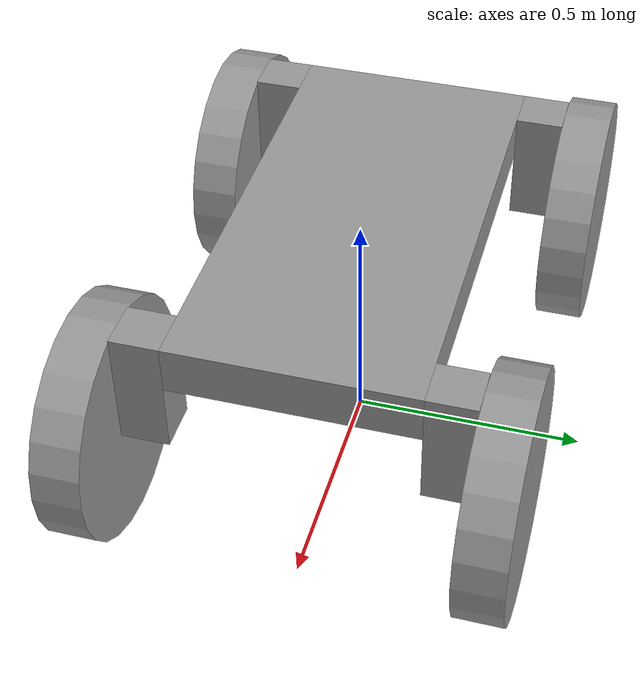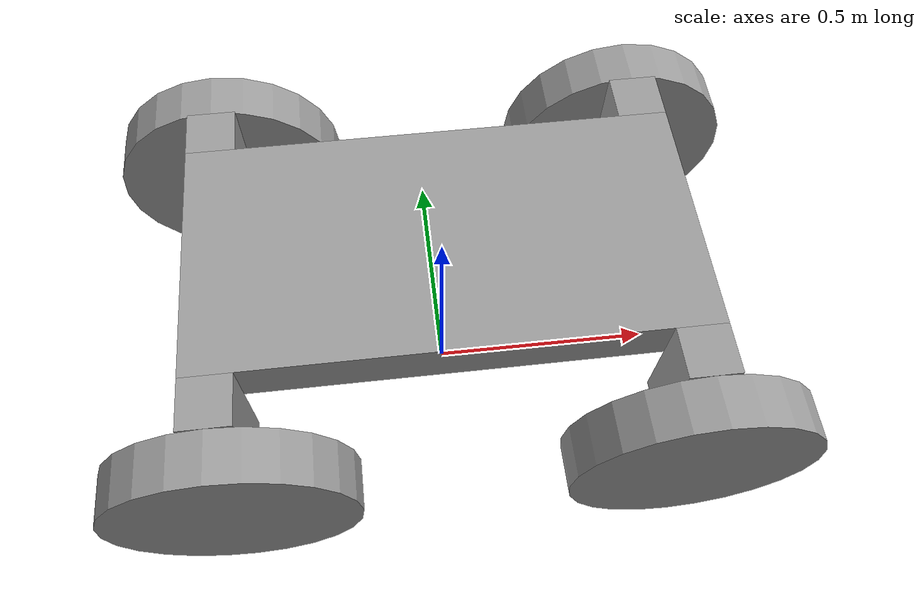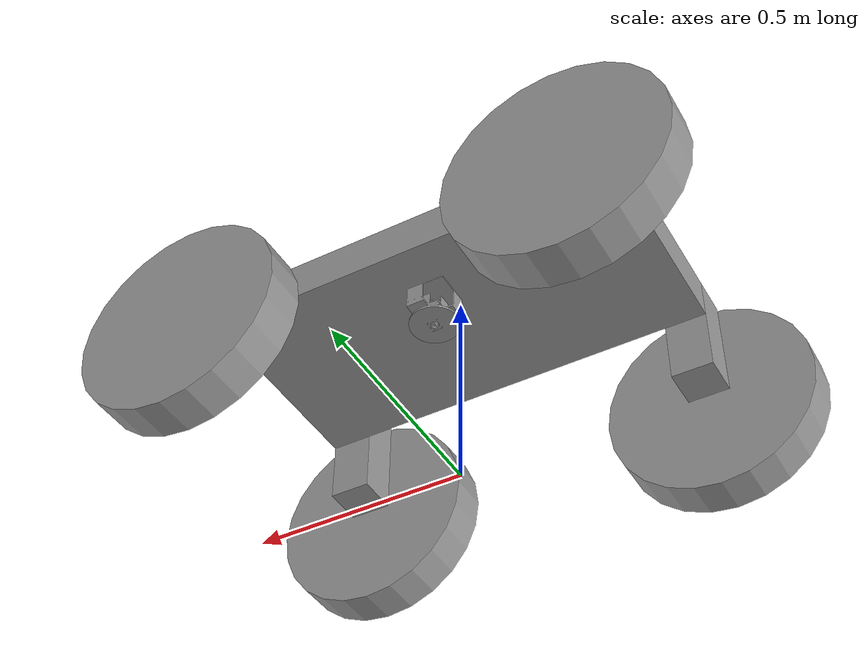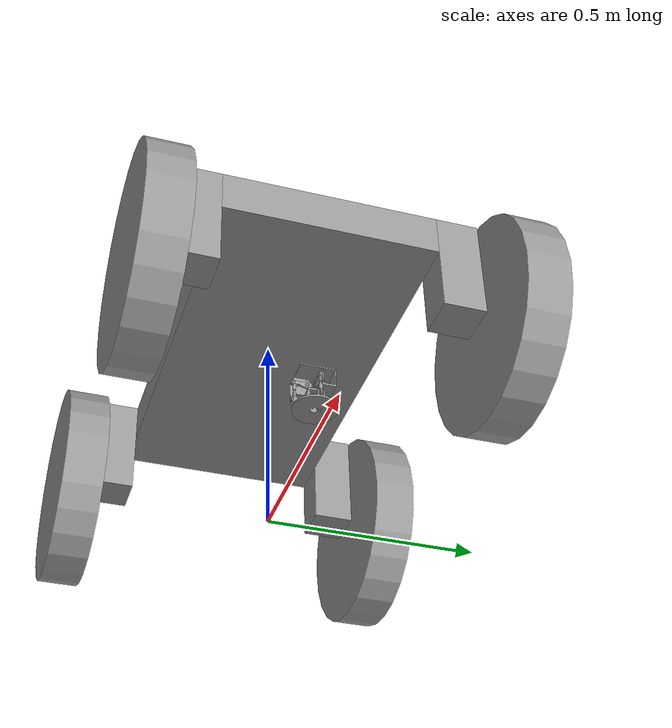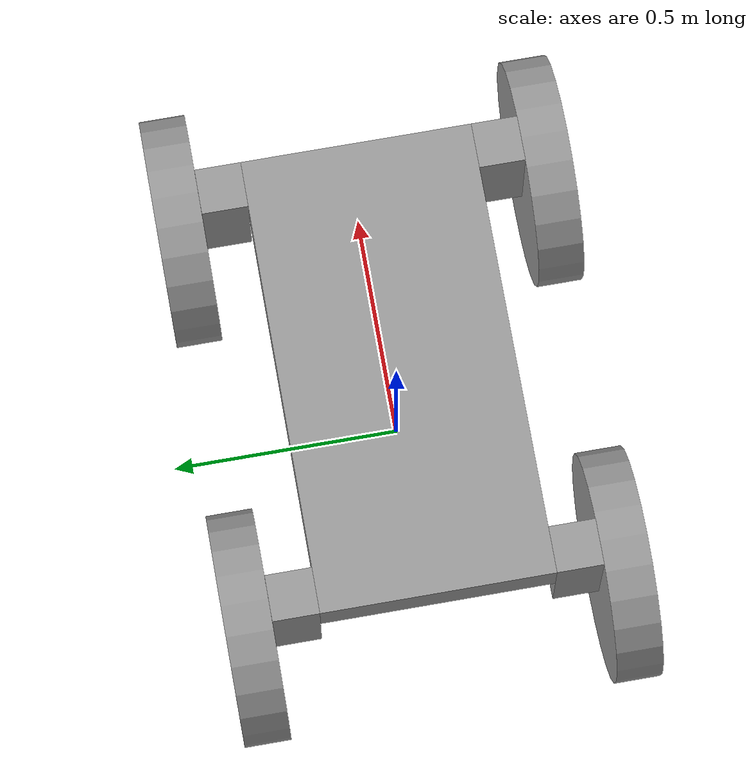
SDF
<?xml version='1.0'?>
<sdf version='1.7'>
  <model name='cart1'>
    <link name='link_0'>
      <inertial>
        <mass>1</mass>
        <inertia>
          <ixx>0.166667</ixx>
          <ixy>0</ixy>
          <ixz>0</ixz>
          <iyy>0.166667</iyy>
          <iyz>0</iyz>
          <izz>0.166667</izz>
        </inertia>
        <pose>0 0 0 0 -0 0</pose>
      </inertial>
      <pose>-0 0 0.5 0 -0 0</pose>
      <gravity>1</gravity>
      <self_collide>0</self_collide>
      <kinematic>0</kinematic>
      <enable_wind>0</enable_wind>
      <visual name='visual'>
        <pose>0 0 0 0 -0 0</pose>
        <geometry>
          <box>
            <size>1 0.5 0.1</size>
          </box>
        </geometry>
        <material>
          <lighting>1</lighting>
          <script>
            <uri>file://media/materials/scripts/gazebo.material</uri>
            <name>Gazebo/Grey</name>
          </script>
          <shader type='pixel'>
            <normal_map>__default__</normal_map>
          </shader>
          <ambient>0.3 0.3 0.3 1</ambient>
          <diffuse>0.7 0.7 0.7 1</diffuse>
          <specular>0.01 0.01 0.01 1</specular>
          <emissive>0 0 0 1</emissive>
        </material>
        <transparency>0</transparency>
        <cast_shadows>1</cast_shadows>
      </visual>
      <collision name='collision'>
        <laser_retro>0</laser_retro>
        <max_contacts>10</max_contacts>
        <pose>0 0 0 0 -0 0</pose>
        <geometry>
          <box>
            <size>1 0.5 0.1</size>
          </box>
        </geometry>
        <surface>
          <friction>
            <ode>
              <mu>1</mu>
              <mu2>1</mu2>
              <fdir1>0 0 0</fdir1>
              <slip1>0</slip1>
              <slip2>0</slip2>
            </ode>
            <torsional>
              <coefficient>1</coefficient>
              <patch_radius>0</patch_radius>
              <surface_radius>0</surface_radius>
              <use_patch_radius>1</use_patch_radius>
              <ode>
                <slip>0</slip>
              </ode>
            </torsional>
          </friction>
          <bounce>
            <restitution_coefficient>0</restitution_coefficient>
            <threshold>1e+06</threshold>
          </bounce>
          <contact>
            <collide_without_contact>0</collide_without_contact>
            <collide_without_contact_bitmask>1</collide_without_contact_bitmask>
            <collide_bitmask>1</collide_bitmask>
            <ode>
              <soft_cfm>0</soft_cfm>
              <soft_erp>0.2</soft_erp>
              <kp>1e+13</kp>
              <kd>1</kd>
              <max_vel>0.01</max_vel>
              <min_depth>0</min_depth>
            </ode>
            <bullet>
              <split_impulse>1</split_impulse>
              <split_impulse_penetration_threshold>-0.01</split_impulse_penetration_threshold>
              <soft_cfm>0</soft_cfm>
              <soft_erp>0.2</soft_erp>
              <kp>1e+13</kp>
              <kd>1</kd>
            </bullet>
          </contact>
        </surface>
      </collision>
    </link>
    <link name='link_0_0_clone'>
      <inertial>
        <mass>0.05</mass>
        <inertia>
          <ixx>0.00833333</ixx>
          <ixy>0</ixy>
          <ixz>0</ixz>
          <iyy>0.00833333</iyy>
          <iyz>0</iyz>
          <izz>0.00833333</izz>
        </inertia>
        <pose>0 0 0 0 -0 0</pose>
      </inertial>
      <pose>-0.45 -0.3 0.425 0 -0 0</pose>
      <gravity>1</gravity>
      <self_collide>0</self_collide>
      <kinematic>0</kinematic>
      <enable_wind>0</enable_wind>
      <visual name='visual_0'>
        <pose>0 0 0 0 -0 0</pose>
        <geometry>
          <box>
            <size>0.1 0.1 0.25</size>
          </box>
        </geometry>
        <material>
          <lighting>1</lighting>
          <script>
            <uri>file://media/materials/scripts/gazebo.material</uri>
            <name>Gazebo/Grey</name>
          </script>
          <shader type='pixel'>
            <normal_map>__default__</normal_map>
          </shader>
          <ambient>0.3 0.3 0.3 1</ambient>
          <diffuse>0.7 0.7 0.7 1</diffuse>
          <specular>0.01 0.01 0.01 1</specular>
          <emissive>0 0 0 1</emissive>
        </material>
        <transparency>0</transparency>
        <cast_shadows>1</cast_shadows>
      </visual>
      <collision name='collision'>
        <laser_retro>0</laser_retro>
        <max_contacts>10</max_contacts>
        <pose>0 0 0 0 -0 0</pose>
        <geometry>
          <box>
            <size>0.1 0.1 0.25</size>
          </box>
        </geometry>
        <surface>
          <friction>
            <ode>
              <mu>1</mu>
              <mu2>1</mu2>
              <fdir1>0 0 0</fdir1>
              <slip1>0</slip1>
              <slip2>0</slip2>
            </ode>
            <torsional>
              <coefficient>1</coefficient>
              <patch_radius>0</patch_radius>
              <surface_radius>0</surface_radius>
              <use_patch_radius>1</use_patch_radius>
              <ode>
                <slip>0</slip>
              </ode>
            </torsional>
          </friction>
          <bounce>
            <restitution_coefficient>0</restitution_coefficient>
            <threshold>1e+06</threshold>
          </bounce>
          <contact>
            <collide_without_contact>0</collide_without_contact>
            <collide_without_contact_bitmask>1</collide_without_contact_bitmask>
            <collide_bitmask>1</collide_bitmask>
            <ode>
              <soft_cfm>0</soft_cfm>
              <soft_erp>0.2</soft_erp>
              <kp>1e+13</kp>
              <kd>1</kd>
              <max_vel>0.01</max_vel>
              <min_depth>0</min_depth>
            </ode>
            <bullet>
              <split_impulse>1</split_impulse>
              <split_impulse_penetration_threshold>-0.01</split_impulse_penetration_threshold>
              <soft_cfm>0</soft_cfm>
              <soft_erp>0.2</soft_erp>
              <kp>1e+13</kp>
              <kd>1</kd>
            </bullet>
          </contact>
        </surface>
      </collision>
    </link>
    <link name='link_0_0_clone_0'>
      <inertial>
        <mass>0.05</mass>
        <inertia>
          <ixx>0.00833333</ixx>
          <ixy>0</ixy>
          <ixz>0</ixz>
          <iyy>0.00833333</iyy>
          <iyz>0</iyz>
          <izz>0.00833333</izz>
        </inertia>
        <pose>0 0 0 0 -0 0</pose>
      </inertial>
      <pose>0.45 -0.3 0.425 0 -0 0</pose>
      <gravity>1</gravity>
      <self_collide>0</self_collide>
      <kinematic>0</kinematic>
      <enable_wind>0</enable_wind>
      <visual name='visual_0'>
        <pose>0 0 0 0 -0 0</pose>
        <geometry>
          <box>
            <size>0.1 0.1 0.25</size>
          </box>
        </geometry>
        <material>
          <lighting>1</lighting>
          <script>
            <uri>file://media/materials/scripts/gazebo.material</uri>
            <name>Gazebo/Grey</name>
          </script>
          <shader type='pixel'>
            <normal_map>__default__</normal_map>
          </shader>
          <ambient>0.3 0.3 0.3 1</ambient>
          <diffuse>0.7 0.7 0.7 1</diffuse>
          <specular>0.01 0.01 0.01 1</specular>
          <emissive>0 0 0 1</emissive>
        </material>
        <transparency>0</transparency>
        <cast_shadows>1</cast_shadows>
      </visual>
      <collision name='collision'>
        <laser_retro>0</laser_retro>
        <max_contacts>10</max_contacts>
        <pose>0 0 0 0 -0 0</pose>
        <geometry>
          <box>
            <size>0.1 0.1 0.25</size>
          </box>
        </geometry>
        <surface>
          <friction>
            <ode>
              <mu>1</mu>
              <mu2>1</mu2>
              <fdir1>0 0 0</fdir1>
              <slip1>0</slip1>
              <slip2>0</slip2>
            </ode>
            <torsional>
              <coefficient>1</coefficient>
              <patch_radius>0</patch_radius>
              <surface_radius>0</surface_radius>
              <use_patch_radius>1</use_patch_radius>
              <ode>
                <slip>0</slip>
              </ode>
            </torsional>
          </friction>
          <bounce>
            <restitution_coefficient>0</restitution_coefficient>
            <threshold>1e+06</threshold>
          </bounce>
          <contact>
            <collide_without_contact>0</collide_without_contact>
            <collide_without_contact_bitmask>1</collide_without_contact_bitmask>
            <collide_bitmask>1</collide_bitmask>
            <ode>
              <soft_cfm>0</soft_cfm>
              <soft_erp>0.2</soft_erp>
              <kp>1e+13</kp>
              <kd>1</kd>
              <max_vel>0.01</max_vel>
              <min_depth>0</min_depth>
            </ode>
            <bullet>
              <split_impulse>1</split_impulse>
              <split_impulse_penetration_threshold>-0.01</split_impulse_penetration_threshold>
              <soft_cfm>0</soft_cfm>
              <soft_erp>0.2</soft_erp>
              <kp>1e+13</kp>
              <kd>1</kd>
            </bullet>
          </contact>
        </surface>
      </collision>
    </link>
    <link name='link_0_0_clone_1'>
      <inertial>
        <mass>0.05</mass>
        <inertia>
          <ixx>0.00833333</ixx>
          <ixy>0</ixy>
          <ixz>0</ixz>
          <iyy>0.00833333</iyy>
          <iyz>0</iyz>
          <izz>0.00833333</izz>
        </inertia>
        <pose>0 0 0 0 -0 0</pose>
      </inertial>
      <pose>0.45 0.3 0.425 0 -0 0</pose>
      <gravity>1</gravity>
      <self_collide>0</self_collide>
      <kinematic>0</kinematic>
      <enable_wind>0</enable_wind>
      <visual name='visual_0'>
        <pose>0 0 0 0 -0 0</pose>
        <geometry>
          <box>
            <size>0.1 0.1 0.25</size>
          </box>
        </geometry>
        <material>
          <lighting>1</lighting>
          <script>
            <uri>file://media/materials/scripts/gazebo.material</uri>
            <name>Gazebo/Grey</name>
          </script>
          <shader type='pixel'>
            <normal_map>__default__</normal_map>
          </shader>
          <ambient>0.3 0.3 0.3 1</ambient>
          <diffuse>0.7 0.7 0.7 1</diffuse>
          <specular>0.01 0.01 0.01 1</specular>
          <emissive>0 0 0 1</emissive>
        </material>
        <transparency>0</transparency>
        <cast_shadows>1</cast_shadows>
      </visual>
      <collision name='collision'>
        <laser_retro>0</laser_retro>
        <max_contacts>10</max_contacts>
        <pose>0 0 0 0 -0 0</pose>
        <geometry>
          <box>
            <size>0.1 0.1 0.25</size>
          </box>
        </geometry>
        <surface>
          <friction>
            <ode>
              <mu>1</mu>
              <mu2>1</mu2>
              <fdir1>0 0 0</fdir1>
              <slip1>0</slip1>
              <slip2>0</slip2>
            </ode>
            <torsional>
              <coefficient>1</coefficient>
              <patch_radius>0</patch_radius>
              <surface_radius>0</surface_radius>
              <use_patch_radius>1</use_patch_radius>
              <ode>
                <slip>0</slip>
              </ode>
            </torsional>
          </friction>
          <bounce>
            <restitution_coefficient>0</restitution_coefficient>
            <threshold>1e+06</threshold>
          </bounce>
          <contact>
            <collide_without_contact>0</collide_without_contact>
            <collide_without_contact_bitmask>1</collide_without_contact_bitmask>
            <collide_bitmask>1</collide_bitmask>
            <ode>
              <soft_cfm>0</soft_cfm>
              <soft_erp>0.2</soft_erp>
              <kp>1e+13</kp>
              <kd>1</kd>
              <max_vel>0.01</max_vel>
              <min_depth>0</min_depth>
            </ode>
            <bullet>
              <split_impulse>1</split_impulse>
              <split_impulse_penetration_threshold>-0.01</split_impulse_penetration_threshold>
              <soft_cfm>0</soft_cfm>
              <soft_erp>0.2</soft_erp>
              <kp>1e+13</kp>
              <kd>1</kd>
            </bullet>
          </contact>
        </surface>
      </collision>
    </link>
    <link name='link_0_0_clone_2'>
      <inertial>
        <mass>0.05</mass>
        <inertia>
          <ixx>0.00833333</ixx>
          <ixy>0</ixy>
          <ixz>0</ixz>
          <iyy>0.00833333</iyy>
          <iyz>0</iyz>
          <izz>0.00833333</izz>
        </inertia>
        <pose>0 0 0 0 -0 0</pose>
      </inertial>
      <pose>-0.45 0.3 0.425 0 -0 0</pose>
      <gravity>1</gravity>
      <self_collide>0</self_collide>
      <kinematic>0</kinematic>
      <enable_wind>0</enable_wind>
      <visual name='visual_0'>
        <pose>0 0 0 0 -0 0</pose>
        <geometry>
          <box>
            <size>0.1 0.1 0.25</size>
          </box>
        </geometry>
        <material>
          <lighting>1</lighting>
          <script>
            <uri>file://media/materials/scripts/gazebo.material</uri>
            <name>Gazebo/Grey</name>
          </script>
          <shader type='pixel'>
            <normal_map>__default__</normal_map>
          </shader>
          <ambient>0.3 0.3 0.3 1</ambient>
          <diffuse>0.7 0.7 0.7 1</diffuse>
          <specular>0.01 0.01 0.01 1</specular>
          <emissive>0 0 0 1</emissive>
        </material>
        <transparency>0</transparency>
        <cast_shadows>1</cast_shadows>
      </visual>
      <collision name='collision'>
        <laser_retro>0</laser_retro>
        <max_contacts>10</max_contacts>
        <pose>0 0 0 0 -0 0</pose>
        <geometry>
          <box>
            <size>0.1 0.1 0.25</size>
          </box>
        </geometry>
        <surface>
          <friction>
            <ode>
              <mu>1</mu>
              <mu2>1</mu2>
              <fdir1>0 0 0</fdir1>
              <slip1>0</slip1>
              <slip2>0</slip2>
            </ode>
            <torsional>
              <coefficient>1</coefficient>
              <patch_radius>0</patch_radius>
              <surface_radius>0</surface_radius>
              <use_patch_radius>1</use_patch_radius>
              <ode>
                <slip>0</slip>
              </ode>
            </torsional>
          </friction>
          <bounce>
            <restitution_coefficient>0</restitution_coefficient>
            <threshold>1e+06</threshold>
          </bounce>
          <contact>
            <collide_without_contact>0</collide_without_contact>
            <collide_without_contact_bitmask>1</collide_without_contact_bitmask>
            <collide_bitmask>1</collide_bitmask>
            <ode>
              <soft_cfm>0</soft_cfm>
              <soft_erp>0.2</soft_erp>
              <kp>1e+13</kp>
              <kd>1</kd>
              <max_vel>0.01</max_vel>
              <min_depth>0</min_depth>
            </ode>
            <bullet>
              <split_impulse>1</split_impulse>
              <split_impulse_penetration_threshold>-0.01</split_impulse_penetration_threshold>
              <soft_cfm>0</soft_cfm>
              <soft_erp>0.2</soft_erp>
              <kp>1e+13</kp>
              <kd>1</kd>
            </bullet>
          </contact>
        </surface>
      </collision>
    </link>
    <link name='link_2_clone'>
      <inertial>
        <mass>0.1</mass>
        <inertia>
          <ixx>0.0145833</ixx>
          <ixy>0</ixy>
          <ixz>0</ixz>
          <iyy>0.0145833</iyy>
          <iyz>0</iyz>
          <izz>0.0125</izz>
        </inertia>
        <pose>0 0 0 0 -0 0</pose>
      </inertial>
      <pose>-0.45 0.400024 0.3 1.5707 -0 0</pose>
      <gravity>1</gravity>
      <self_collide>0</self_collide>
      <kinematic>0</kinematic>
      <enable_wind>0</enable_wind>
      <visual name='visual'>
        <pose>0 0 0 0 -0 0</pose>
        <geometry>
          <cylinder>
            <radius>0.25</radius>
            <length>0.1</length>
          </cylinder>
        </geometry>
        <material>
          <lighting>1</lighting>
          <script>
            <uri>file://media/materials/scripts/gazebo.material</uri>
            <name>Gazebo/Grey</name>
          </script>
          <shader type='pixel'>
            <normal_map>__default__</normal_map>
          </shader>
          <ambient>0.3 0.3 0.3 1</ambient>
          <diffuse>0.7 0.7 0.7 1</diffuse>
          <specular>0.01 0.01 0.01 1</specular>
          <emissive>0 0 0 1</emissive>
        </material>
        <transparency>0</transparency>
        <cast_shadows>1</cast_shadows>
      </visual>
      <collision name='collision'>
        <laser_retro>0</laser_retro>
        <max_contacts>10</max_contacts>
        <pose>0 0 0 0 -0 0</pose>
        <geometry>
          <cylinder>
            <radius>0.25</radius>
            <length>0.1</length>
          </cylinder>
        </geometry>
        <surface>
          <friction>
            <ode>
              <mu>1</mu>
              <mu2>1</mu2>
              <fdir1>0 0 0</fdir1>
              <slip1>0</slip1>
              <slip2>0</slip2>
            </ode>
            <torsional>
              <coefficient>1</coefficient>
              <patch_radius>0</patch_radius>
              <surface_radius>0</surface_radius>
              <use_patch_radius>1</use_patch_radius>
              <ode>
                <slip>0</slip>
              </ode>
            </torsional>
          </friction>
          <bounce>
            <restitution_coefficient>0</restitution_coefficient>
            <threshold>1e+06</threshold>
          </bounce>
          <contact>
            <collide_without_contact>0</collide_without_contact>
            <collide_without_contact_bitmask>1</collide_without_contact_bitmask>
            <collide_bitmask>1</collide_bitmask>
            <ode>
              <soft_cfm>0</soft_cfm>
              <soft_erp>0.2</soft_erp>
              <kp>1e+13</kp>
              <kd>1</kd>
              <max_vel>0.01</max_vel>
              <min_depth>0</min_depth>
            </ode>
            <bullet>
              <split_impulse>1</split_impulse>
              <split_impulse_penetration_threshold>-0.01</split_impulse_penetration_threshold>
              <soft_cfm>0</soft_cfm>
              <soft_erp>0.2</soft_erp>
              <kp>1e+13</kp>
              <kd>1</kd>
            </bullet>
          </contact>
        </surface>
      </collision>
    </link>
    <link name='link_2_clone_0'>
      <inertial>
        <mass>0.1</mass>
        <inertia>
          <ixx>0.0145833</ixx>
          <ixy>0</ixy>
          <ixz>0</ixz>
          <iyy>0.0145833</iyy>
          <iyz>0</iyz>
          <izz>0.0125</izz>
        </inertia>
        <pose>0 0 0 0 -0 0</pose>
      </inertial>
      <pose>-0.45 -0.400024 0.3 1.5707 -0 0</pose>
      <gravity>1</gravity>
      <self_collide>0</self_collide>
      <kinematic>0</kinematic>
      <enable_wind>0</enable_wind>
      <visual name='visual'>
        <pose>0 0 0 0 -0 0</pose>
        <geometry>
          <cylinder>
            <radius>0.25</radius>
            <length>0.1</length>
          </cylinder>
        </geometry>
        <material>
          <lighting>1</lighting>
          <script>
            <uri>file://media/materials/scripts/gazebo.material</uri>
            <name>Gazebo/Grey</name>
          </script>
          <shader type='pixel'>
            <normal_map>__default__</normal_map>
          </shader>
          <ambient>0.3 0.3 0.3 1</ambient>
          <diffuse>0.7 0.7 0.7 1</diffuse>
          <specular>0.01 0.01 0.01 1</specular>
          <emissive>0 0 0 1</emissive>
        </material>
        <transparency>0</transparency>
        <cast_shadows>1</cast_shadows>
      </visual>
      <collision name='collision'>
        <laser_retro>0</laser_retro>
        <max_contacts>10</max_contacts>
        <pose>0 0 0 0 -0 0</pose>
        <geometry>
          <cylinder>
            <radius>0.25</radius>
            <length>0.1</length>
          </cylinder>
        </geometry>
        <surface>
          <friction>
            <ode>
              <mu>1</mu>
              <mu2>1</mu2>
              <fdir1>0 0 0</fdir1>
              <slip1>0</slip1>
              <slip2>0</slip2>
            </ode>
            <torsional>
              <coefficient>1</coefficient>
              <patch_radius>0</patch_radius>
              <surface_radius>0</surface_radius>
              <use_patch_radius>1</use_patch_radius>
              <ode>
                <slip>0</slip>
              </ode>
            </torsional>
          </friction>
          <bounce>
            <restitution_coefficient>0</restitution_coefficient>
            <threshold>1e+06</threshold>
          </bounce>
          <contact>
            <collide_without_contact>0</collide_without_contact>
            <collide_without_contact_bitmask>1</collide_without_contact_bitmask>
            <collide_bitmask>1</collide_bitmask>
            <ode>
              <soft_cfm>0</soft_cfm>
              <soft_erp>0.2</soft_erp>
              <kp>1e+13</kp>
              <kd>1</kd>
              <max_vel>0.01</max_vel>
              <min_depth>0</min_depth>
            </ode>
            <bullet>
              <split_impulse>1</split_impulse>
              <split_impulse_penetration_threshold>-0.01</split_impulse_penetration_threshold>
              <soft_cfm>0</soft_cfm>
              <soft_erp>0.2</soft_erp>
              <kp>1e+13</kp>
              <kd>1</kd>
            </bullet>
          </contact>
        </surface>
      </collision>
    </link>
    <link name='link_2_clone_1'>
      <inertial>
        <mass>0.1</mass>
        <inertia>
          <ixx>0.0145833</ixx>
          <ixy>0</ixy>
          <ixz>0</ixz>
          <iyy>0.0145833</iyy>
          <iyz>0</iyz>
          <izz>0.0125</izz>
        </inertia>
        <pose>0 0 0 0 -0 0</pose>
      </inertial>
      <pose>0.45 -0.400024 0.3 1.5707 -0 0</pose>
      <gravity>1</gravity>
      <self_collide>0</self_collide>
      <kinematic>0</kinematic>
      <enable_wind>0</enable_wind>
      <visual name='visual'>
        <pose>0 0 0 0 -0 0</pose>
        <geometry>
          <cylinder>
            <radius>0.25</radius>
            <length>0.1</length>
          </cylinder>
        </geometry>
        <material>
          <lighting>1</lighting>
          <script>
            <uri>file://media/materials/scripts/gazebo.material</uri>
            <name>Gazebo/Grey</name>
          </script>
          <shader type='pixel'>
            <normal_map>__default__</normal_map>
          </shader>
          <ambient>0.3 0.3 0.3 1</ambient>
          <diffuse>0.7 0.7 0.7 1</diffuse>
          <specular>0.01 0.01 0.01 1</specular>
          <emissive>0 0 0 1</emissive>
        </material>
        <transparency>0</transparency>
        <cast_shadows>1</cast_shadows>
      </visual>
      <collision name='collision'>
        <laser_retro>0</laser_retro>
        <max_contacts>10</max_contacts>
        <pose>0 0 0 0 -0 0</pose>
        <geometry>
          <cylinder>
            <radius>0.25</radius>
            <length>0.1</length>
          </cylinder>
        </geometry>
        <surface>
          <friction>
            <ode>
              <mu>1</mu>
              <mu2>1</mu2>
              <fdir1>0 0 0</fdir1>
              <slip1>0</slip1>
              <slip2>0</slip2>
            </ode>
            <torsional>
              <coefficient>1</coefficient>
              <patch_radius>0</patch_radius>
              <surface_radius>0</surface_radius>
              <use_patch_radius>1</use_patch_radius>
              <ode>
                <slip>0</slip>
              </ode>
            </torsional>
          </friction>
          <bounce>
            <restitution_coefficient>0</restitution_coefficient>
            <threshold>1e+06</threshold>
          </bounce>
          <contact>
            <collide_without_contact>0</collide_without_contact>
            <collide_without_contact_bitmask>1</collide_without_contact_bitmask>
            <collide_bitmask>1</collide_bitmask>
            <ode>
              <soft_cfm>0</soft_cfm>
              <soft_erp>0.2</soft_erp>
              <kp>1e+13</kp>
              <kd>1</kd>
              <max_vel>0.01</max_vel>
              <min_depth>0</min_depth>
            </ode>
            <bullet>
              <split_impulse>1</split_impulse>
              <split_impulse_penetration_threshold>-0.01</split_impulse_penetration_threshold>
              <soft_cfm>0</soft_cfm>
              <soft_erp>0.2</soft_erp>
              <kp>1e+13</kp>
              <kd>1</kd>
            </bullet>
          </contact>
        </surface>
      </collision>
    </link>
    <link name='link_2_clone_2'>
      <inertial>
        <mass>0.1</mass>
        <inertia>
          <ixx>0.0145833</ixx>
          <ixy>0</ixy>
          <ixz>0</ixz>
          <iyy>0.0145833</iyy>
          <iyz>0</iyz>
          <izz>0.0125</izz>
        </inertia>
        <pose>0 0 0 0 -0 0</pose>
      </inertial>
      <pose>0.45 0.400024 0.3 1.5707 -0 0</pose>
      <gravity>1</gravity>
      <self_collide>0</self_collide>
      <kinematic>0</kinematic>
      <enable_wind>0</enable_wind>
      <visual name='visual'>
        <pose>0 0 0 0 -0 0</pose>
        <geometry>
          <cylinder>
            <radius>0.25</radius>
            <length>0.1</length>
          </cylinder>
        </geometry>
        <material>
          <lighting>1</lighting>
          <script>
            <uri>file://media/materials/scripts/gazebo.material</uri>
            <name>Gazebo/Grey</name>
          </script>
          <shader type='pixel'>
            <normal_map>__default__</normal_map>
          </shader>
          <ambient>0.3 0.3 0.3 1</ambient>
          <diffuse>0.7 0.7 0.7 1</diffuse>
          <specular>0.01 0.01 0.01 1</specular>
          <emissive>0 0 0 1</emissive>
        </material>
        <transparency>0</transparency>
        <cast_shadows>1</cast_shadows>
      </visual>
      <collision name='collision'>
        <laser_retro>0</laser_retro>
        <max_contacts>10</max_contacts>
        <pose>0 0 0 0 -0 0</pose>
        <geometry>
          <cylinder>
            <radius>0.25</radius>
            <length>0.1</length>
          </cylinder>
        </geometry>
        <surface>
          <friction>
            <ode>
              <mu>1</mu>
              <mu2>1</mu2>
              <fdir1>0 0 0</fdir1>
              <slip1>0</slip1>
              <slip2>0</slip2>
            </ode>
            <torsional>
              <coefficient>1</coefficient>
              <patch_radius>0</patch_radius>
              <surface_radius>0</surface_radius>
              <use_patch_radius>1</use_patch_radius>
              <ode>
                <slip>0</slip>
              </ode>
            </torsional>
          </friction>
          <bounce>
            <restitution_coefficient>0</restitution_coefficient>
            <threshold>1e+06</threshold>
          </bounce>
          <contact>
            <collide_without_contact>0</collide_without_contact>
            <collide_without_contact_bitmask>1</collide_without_contact_bitmask>
            <collide_bitmask>1</collide_bitmask>
            <ode>
              <soft_cfm>0</soft_cfm>
              <soft_erp>0.2</soft_erp>
              <kp>1e+13</kp>
              <kd>1</kd>
              <max_vel>0.01</max_vel>
              <min_depth>0</min_depth>
            </ode>
            <bullet>
              <split_impulse>1</split_impulse>
              <split_impulse_penetration_threshold>-0.01</split_impulse_penetration_threshold>
              <soft_cfm>0</soft_cfm>
              <soft_erp>0.2</soft_erp>
              <kp>1e+13</kp>
              <kd>1</kd>
            </bullet>
          </contact>
        </surface>
      </collision>
    </link>
    <joint name='front_right' type='revolute'>
      <parent>link_0_0_clone_0</parent>
      <child>link_2_clone_1</child>
      <pose>0 0 0 0 -0 0</pose>
      <axis>
        <xyz>0 0 -1</xyz>
        <limit>
          <lower>-1.79769e+308</lower>
          <upper>1.79769e+308</upper>
          <effort>-1</effort>
          <velocity>-1</velocity>
        </limit>
        <dynamics>
          <spring_reference>0</spring_reference>
          <spring_stiffness>0</spring_stiffness>
          <damping>0</damping>
          <friction>0</friction>
        </dynamics>
      </axis>
      <physics>
        <ode>
          <limit>
            <cfm>0</cfm>
            <erp>0.2</erp>
          </limit>
          <suspension>
            <cfm>0</cfm>
            <erp>0.2</erp>
          </suspension>
        </ode>
      </physics>
    </joint>
    <joint name='front_left' type='revolute'>
      <parent>link_0_0_clone_1</parent>
      <child>link_2_clone_2</child>
      <pose>0 0 0 0 -0 0</pose>
      <axis>
        <xyz>0 0 1</xyz>
        <limit>
          <lower>-1.79769e+308</lower>
          <upper>1.79769e+308</upper>
          <effort>-1</effort>
          <velocity>-1</velocity>
        </limit>
        <dynamics>
          <spring_reference>0</spring_reference>
          <spring_stiffness>0</spring_stiffness>
          <damping>0</damping>
          <friction>0</friction>
        </dynamics>
      </axis>
      <physics>
        <ode>
          <limit>
            <cfm>0</cfm>
            <erp>0.2</erp>
          </limit>
          <suspension>
            <cfm>0</cfm>
            <erp>0.2</erp>
          </suspension>
        </ode>
      </physics>
    </joint>
    <joint name='back_left' type='revolute'>
      <parent>link_0_0_clone_2</parent>
      <child>link_2_clone</child>
      <pose>0 0 0 0 -0 0</pose>
      <axis>
        <xyz>0 0 1</xyz>
        <limit>
          <lower>-1.79769e+308</lower>
          <upper>1.79769e+308</upper>
          <effort>-1</effort>
          <velocity>-1</velocity>
        </limit>
        <dynamics>
          <spring_reference>0</spring_reference>
          <spring_stiffness>0</spring_stiffness>
          <damping>0</damping>
          <friction>0</friction>
        </dynamics>
      </axis>
      <physics>
        <ode>
          <limit>
            <cfm>0</cfm>
            <erp>0.2</erp>
          </limit>
          <suspension>
            <cfm>0</cfm>
            <erp>0.2</erp>
          </suspension>
        </ode>
      </physics>
    </joint>
    <joint name='back_right' type='revolute'>
      <parent>link_0_0_clone</parent>
      <child>link_2_clone_0</child>
      <pose>0 0 0 0 -0 0</pose>
      <axis>
        <xyz>0 0 -1</xyz>
        <limit>
          <lower>-1.79769e+308</lower>
          <upper>1.79769e+308</upper>
          <effort>-1</effort>
          <velocity>-1</velocity>
        </limit>
        <dynamics>
          <spring_reference>0</spring_reference>
          <spring_stiffness>0</spring_stiffness>
          <damping>0</damping>
          <friction>0</friction>
        </dynamics>
      </axis>
      <physics>
        <ode>
          <limit>
            <cfm>0</cfm>
            <erp>0.2</erp>
          </limit>
          <suspension>
            <cfm>0</cfm>
            <erp>0.2</erp>
          </suspension>
        </ode>
      </physics>
    </joint>
    <joint name='link_0_JOINT_0' type='fixed'>
      <parent>link_0</parent>
      <child>link_0_0_clone</child>
      <pose>0 0.05 0.075 0 -0 0</pose>
      <physics>
        <ode>
          <limit>
            <cfm>0</cfm>
            <erp>0.2</erp>
          </limit>
          <suspension>
            <cfm>0</cfm>
            <erp>0.2</erp>
          </suspension>
        </ode>
      </physics>
    </joint>
    <joint name='link_0_JOINT_1' type='fixed'>
      <parent>link_0</parent>
      <child>link_0_0_clone_0</child>
      <pose>0 0.05 0.075 0 -0 0</pose>
      <physics>
        <ode>
          <limit>
            <cfm>0</cfm>
            <erp>0.2</erp>
          </limit>
          <suspension>
            <cfm>0</cfm>
            <erp>0.2</erp>
          </suspension>
        </ode>
      </physics>
    </joint>
    <joint name='link_0_JOINT_2' type='fixed'>
      <parent>link_0</parent>
      <child>link_0_0_clone_1</child>
      <pose>0 -0.05 0.075 0 -0 0</pose>
      <physics>
        <ode>
          <limit>
            <cfm>0</cfm>
            <erp>0.2</erp>
          </limit>
          <suspension>
            <cfm>0</cfm>
            <erp>0.2</erp>
          </suspension>
        </ode>
      </physics>
    </joint>
    <joint name='link_0_JOINT_3' type='fixed'>
      <parent>link_0</parent>
      <child>link_0_0_clone_2</child>
      <pose>0 -0.05 0.075 0 -0 0</pose>
      <physics>
        <ode>
          <limit>
            <cfm>0</cfm>
            <erp>0.2</erp>
          </limit>
          <suspension>
            <cfm>0</cfm>
            <erp>0.2</erp>
          </suspension>
        </ode>
      </physics>
    </joint>
    <static>0</static>
    <allow_auto_disable>1</allow_auto_disable>

    <include>
      <uri>model://2dof_trial1</uri>
      <scale>0.1 0.1 0.1 0 0 0</scale>
       <pose>0.1810 0.0905 0.33 0 3.1414 0</pose>
    </include>
    <joint name="manipulator" type="fixed">
      <child>2dof_trial1::link_3</child>
      <parent>link_0</parent>
    </joint>

  </model>
</sdf>

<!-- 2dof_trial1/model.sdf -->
<sdf version='1.7'>
  <model name='2dof_trial1'>
    <link name='link_0'>
      <inertial>
        <mass>0.1</mass>
        <inertia>
          <ixx>0.0166667</ixx>
          <ixy>0</ixy>
          <ixz>0</ixz>
          <iyy>0.0166667</iyy>
          <iyz>0</iyz>
          <izz>0.0166667</izz>
        </inertia>
        <pose>0 0 0 0 -0 0</pose>
      </inertial>
      <pose>0.238173 -0.0306345 -0.0364574 0 -0 1.5707</pose>
      <gravity>1</gravity>
      <self_collide>1</self_collide>
      <kinematic>0</kinematic>
      <enable_wind>0</enable_wind>
      <visual name='visual'>
        <pose>0 0 0 0 -0 0</pose>
        <geometry>
          <mesh>
            <uri>/home/sid/plugin_ws/src/model/models/2dof_trial1/meshes/new_top_fixture.stl</uri>
            <scale>0.001 0.001 0.001</scale>
          </mesh>
        </geometry>
        <material>
          <lighting>1</lighting>
          <script>
            <uri>file://media/materials/scripts/gazebo.material</uri>
            <name>Gazebo/Grey</name>
          </script>
          <shader type='pixel'>
            <normal_map>__default__</normal_map>
          </shader>
          <ambient>0.3 0.3 0.3 1</ambient>
          <diffuse>0.7 0.7 0.7 1</diffuse>
          <specular>0.01 0.01 0.01 1</specular>
          <emissive>0 0 0 1</emissive>
        </material>
        <transparency>0</transparency>
        <cast_shadows>1</cast_shadows>
      </visual>
      <collision name='collision'>
        <laser_retro>0</laser_retro>
        <max_contacts>10</max_contacts>
        <pose>0 0 0 0 -0 0</pose>
        <geometry>
          <mesh>
            <uri>/home/sid/plugin_ws/src/model/models/2dof_trial1/meshes/new_top_fixture.stl</uri>
            <scale>0.001 0.001 0.001</scale>
          </mesh>
        </geometry>
        <surface>
          <friction>
            <ode>
              <mu>1</mu>
              <mu2>1</mu2>
              <fdir1>0 0 0</fdir1>
              <slip1>0</slip1>
              <slip2>0</slip2>
            </ode>
            <torsional>
              <coefficient>1</coefficient>
              <patch_radius>0</patch_radius>
              <surface_radius>0</surface_radius>
              <use_patch_radius>1</use_patch_radius>
              <ode>
                <slip>0</slip>
              </ode>
            </torsional>
          </friction>
          <bounce>
            <restitution_coefficient>0</restitution_coefficient>
            <threshold>1e+06</threshold>
          </bounce>
          <contact>
            <collide_without_contact>0</collide_without_contact>
            <collide_without_contact_bitmask>1</collide_without_contact_bitmask>
            <collide_bitmask>1</collide_bitmask>
            <ode>
              <soft_cfm>0</soft_cfm>
              <soft_erp>0.2</soft_erp>
              <kp>1e+13</kp>
              <kd>1</kd>
              <max_vel>0.01</max_vel>
              <min_depth>0</min_depth>
            </ode>
            <bullet>
              <split_impulse>1</split_impulse>
              <split_impulse_penetration_threshold>-0.01</split_impulse_penetration_threshold>
              <soft_cfm>0</soft_cfm>
              <soft_erp>0.2</soft_erp>
              <kp>1e+13</kp>
              <kd>1</kd>
            </bullet>
          </contact>
        </surface>
      </collision>
    </link>
    <link name='link_1'>
      <inertial>
        <mass>1</mass>
        <inertia>
          <ixx>0.166667</ixx>
          <ixy>0</ixy>
          <ixz>0</ixz>
          <iyy>0.166667</iyy>
          <iyz>0</iyz>
          <izz>0.166667</izz>
        </inertia>
        <pose>0 0 0 0 -0 0</pose>
      </inertial>
      <pose>0.122184 0.0193558 -0.0884696 0 -1e-06 0</pose>
      <gravity>1</gravity>
      <self_collide>1</self_collide>
      <kinematic>0</kinematic>
      <enable_wind>0</enable_wind>
      <visual name='visual'>
        <pose>0 0 0 0 -0 0</pose>
        <geometry>
          <mesh>
            <uri>/home/sid/plugin_ws/src/model/models/2dof_trial1/meshes/link2.stl</uri>
            <scale>0.001 0.001 0.001</scale>
          </mesh>
        </geometry>
        <material>
          <lighting>1</lighting>
          <script>
            <uri>file://media/materials/scripts/gazebo.material</uri>
            <name>Gazebo/Grey</name>
          </script>
          <shader type='pixel'>
            <normal_map>__default__</normal_map>
          </shader>
          <ambient>0.3 0.3 0.3 1</ambient>
          <diffuse>0.7 0.7 0.7 1</diffuse>
          <specular>0.01 0.01 0.01 1</specular>
          <emissive>0 0 0 1</emissive>
        </material>
        <transparency>0</transparency>
        <cast_shadows>1</cast_shadows>
      </visual>
      <collision name='collision'>
        <laser_retro>0</laser_retro>
        <max_contacts>10</max_contacts>
        <pose>0 0 0 0 -0 0</pose>
        <geometry>
          <mesh>
            <uri>/home/sid/plugin_ws/src/model/models/2dof_trial1/meshes/link2.stl</uri>
            <scale>0.001 0.001 0.001</scale>
          </mesh>
        </geometry>
        <surface>
          <friction>
            <ode>
              <mu>1</mu>
              <mu2>1</mu2>
              <fdir1>0 0 0</fdir1>
              <slip1>0</slip1>
              <slip2>0</slip2>
            </ode>
            <torsional>
              <coefficient>1</coefficient>
              <patch_radius>0</patch_radius>
              <surface_radius>0</surface_radius>
              <use_patch_radius>1</use_patch_radius>
              <ode>
                <slip>0</slip>
              </ode>
            </torsional>
          </friction>
          <bounce>
            <restitution_coefficient>0</restitution_coefficient>
            <threshold>1e+06</threshold>
          </bounce>
          <contact>
            <collide_without_contact>0</collide_without_contact>
            <collide_without_contact_bitmask>1</collide_without_contact_bitmask>
            <collide_bitmask>1</collide_bitmask>
            <ode>
              <soft_cfm>0</soft_cfm>
              <soft_erp>0.2</soft_erp>
              <kp>1e+13</kp>
              <kd>1</kd>
              <max_vel>0.01</max_vel>
              <min_depth>0</min_depth>
            </ode>
            <bullet>
              <split_impulse>1</split_impulse>
              <split_impulse_penetration_threshold>-0.01</split_impulse_penetration_threshold>
              <soft_cfm>0</soft_cfm>
              <soft_erp>0.2</soft_erp>
              <kp>1e+13</kp>
              <kd>1</kd>
            </bullet>
          </contact>
        </surface>
      </collision>
    </link>
    <link name='link_1_clone'>
      <inertial>
        <mass>1</mass>
        <inertia>
          <ixx>0.166667</ixx>
          <ixy>0</ixy>
          <ixz>0</ixz>
          <iyy>0.166667</iyy>
          <iyz>0</iyz>
          <izz>0.166667</izz>
        </inertia>
        <pose>0 0 0 0 -0 0</pose>
      </inertial>
      <pose>0.18819 -0.0316639 -0.0884678 0 -0 1.5707</pose>
      <gravity>1</gravity>
      <self_collide>1</self_collide>
      <kinematic>0</kinematic>
      <enable_wind>0</enable_wind>
      <visual name='visual'>
        <pose>0 0 0 0 -0 0</pose>
        <geometry>
          <mesh>
            <uri>/home/sid/plugin_ws/src/model/models/2dof_trial1/meshes/link2.stl</uri>
            <scale>0.001 0.001 0.001</scale>
          </mesh>
        </geometry>
        <material>
          <lighting>1</lighting>
          <script>
            <uri>file://media/materials/scripts/gazebo.material</uri>
            <name>Gazebo/Grey</name>
          </script>
          <shader type='pixel'>
            <normal_map>__default__</normal_map>
          </shader>
          <ambient>0.3 0.3 0.3 1</ambient>
          <diffuse>0.7 0.7 0.7 1</diffuse>
          <specular>0.01 0.01 0.01 1</specular>
          <emissive>0 0 0 1</emissive>
        </material>
        <transparency>0</transparency>
        <cast_shadows>1</cast_shadows>
      </visual>
      <collision name='collision'>
        <laser_retro>0</laser_retro>
        <max_contacts>10</max_contacts>
        <pose>0 0 0 0 -0 0</pose>
        <geometry>
          <mesh>
            <uri>/home/sid/plugin_ws/src/model/models/2dof_trial1/meshes/link2.stl</uri>
            <scale>0.001 0.001 0.001</scale>
          </mesh>
        </geometry>
        <surface>
          <friction>
            <ode>
              <mu>1</mu>
              <mu2>1</mu2>
              <fdir1>0 0 0</fdir1>
              <slip1>0</slip1>
              <slip2>0</slip2>
            </ode>
            <torsional>
              <coefficient>1</coefficient>
              <patch_radius>0</patch_radius>
              <surface_radius>0</surface_radius>
              <use_patch_radius>1</use_patch_radius>
              <ode>
                <slip>0</slip>
              </ode>
            </torsional>
          </friction>
          <bounce>
            <restitution_coefficient>0</restitution_coefficient>
            <threshold>1e+06</threshold>
          </bounce>
          <contact>
            <collide_without_contact>0</collide_without_contact>
            <collide_without_contact_bitmask>1</collide_without_contact_bitmask>
            <collide_bitmask>1</collide_bitmask>
            <ode>
              <soft_cfm>0</soft_cfm>
              <soft_erp>0.2</soft_erp>
              <kp>1e+13</kp>
              <kd>1</kd>
              <max_vel>0.01</max_vel>
              <min_depth>0</min_depth>
            </ode>
            <bullet>
              <split_impulse>1</split_impulse>
              <split_impulse_penetration_threshold>-0.01</split_impulse_penetration_threshold>
              <soft_cfm>0</soft_cfm>
              <soft_erp>0.2</soft_erp>
              <kp>1e+13</kp>
              <kd>1</kd>
            </bullet>
          </contact>
        </surface>
      </collision>
    </link>
    <link name='link_3'>
      <inertial>
        <mass>1</mass>
        <inertia>
          <ixx>0.166667</ixx>
          <ixy>0</ixy>
          <ixz>0</ixz>
          <iyy>0.166667</iyy>
          <iyz>0</iyz>
          <izz>0.166667</izz>
        </inertia>
        <pose>0 0 0 0 -0 0</pose>
      </inertial>
      <pose>0.22197 -0.0227645 -0.0194605 3.14159 0.000193 3.14159</pose>
      <gravity>1</gravity>
      <self_collide>1</self_collide>
      <kinematic>0</kinematic>
      <enable_wind>0</enable_wind>
      <visual name='visual'>
        <pose>0 0 0 0 -0 0</pose>
        <geometry>
          <mesh>
            <uri>/home/sid/plugin_ws/src/model/models/2dof_trial1/meshes/new_bottom_fixture.stl</uri>
            <scale>0.001 0.001 0.001</scale>
          </mesh>
        </geometry>
        <material>
          <lighting>1</lighting>
          <script>
            <uri>file://media/materials/scripts/gazebo.material</uri>
            <name>Gazebo/Grey</name>
          </script>
          <shader type='pixel'>
            <normal_map>__default__</normal_map>
          </shader>
          <ambient>0.3 0.3 0.3 1</ambient>
          <diffuse>0.7 0.7 0.7 1</diffuse>
          <specular>0.01 0.01 0.01 1</specular>
          <emissive>0 0 0 1</emissive>
        </material>
        <transparency>0</transparency>
        <cast_shadows>1</cast_shadows>
      </visual>
      <collision name='collision'>
        <laser_retro>0</laser_retro>
        <max_contacts>10</max_contacts>
        <pose>0 0 0 0 -0 0</pose>
        <geometry>
          <mesh>
            <uri>/home/sid/plugin_ws/src/model/models/2dof_trial1/meshes/new_bottom_fixture.stl</uri>
            <scale>0.001 0.001 0.001</scale>
          </mesh>
        </geometry>
        <surface>
          <friction>
            <ode>
              <mu>1</mu>
              <mu2>1</mu2>
              <fdir1>0 0 0</fdir1>
              <slip1>0</slip1>
              <slip2>0</slip2>
            </ode>
            <torsional>
              <coefficient>1</coefficient>
              <patch_radius>0</patch_radius>
              <surface_radius>0</surface_radius>
              <use_patch_radius>1</use_patch_radius>
              <ode>
                <slip>0</slip>
              </ode>
            </torsional>
          </friction>
          <bounce>
            <restitution_coefficient>0</restitution_coefficient>
            <threshold>1e+06</threshold>
          </bounce>
          <contact>
            <collide_without_contact>0</collide_without_contact>
            <collide_without_contact_bitmask>1</collide_without_contact_bitmask>
            <collide_bitmask>1</collide_bitmask>
            <ode>
              <soft_cfm>0</soft_cfm>
              <soft_erp>0.2</soft_erp>
              <kp>1e+13</kp>
              <kd>1</kd>
              <max_vel>0.01</max_vel>
              <min_depth>0</min_depth>
            </ode>
            <bullet>
              <split_impulse>1</split_impulse>
              <split_impulse_penetration_threshold>-0.01</split_impulse_penetration_threshold>
              <soft_cfm>0</soft_cfm>
              <soft_erp>0.2</soft_erp>
              <kp>1e+13</kp>
              <kd>1</kd>
            </bullet>
          </contact>
        </surface>
      </collision>
    </link>
    <link name='link_4'>
      <inertial>
        <mass>0.1</mass>
        <inertia>
          <ixx>0.0166667</ixx>
          <ixy>0</ixy>
          <ixz>0</ixz>
          <iyy>0.0166667</iyy>
          <iyz>0</iyz>
          <izz>0.0166667</izz>
        </inertia>
        <pose>0 0 0 0 -0 0</pose>
      </inertial>
      <pose>0.175684 0.0223458 -0.0919693 1.5707 -0 3.1414</pose>
      <gravity>1</gravity>
      <self_collide>1</self_collide>
      <kinematic>0</kinematic>
      <enable_wind>0</enable_wind>
      <visual name='visual'>
        <pose>0 0 0 0 -0 0</pose>
        <geometry>
          <mesh>
            <uri>/home/sid/plugin_ws/src/model/models/2dof_trial1/meshes/m_link.stl</uri>
            <scale>0.001 0.001 0.001</scale>
          </mesh>
        </geometry>
        <material>
          <lighting>1</lighting>
          <script>
            <uri>file://media/materials/scripts/gazebo.material</uri>
            <name>Gazebo/Grey</name>
          </script>
          <shader type='pixel'>
            <normal_map>__default__</normal_map>
          </shader>
          <ambient>0.3 0.3 0.3 1</ambient>
          <diffuse>0.7 0.7 0.7 1</diffuse>
          <specular>0.01 0.01 0.01 1</specular>
          <emissive>0 0 0 1</emissive>
        </material>
        <transparency>0</transparency>
        <cast_shadows>1</cast_shadows>
      </visual>
      <collision name='collision'>
        <laser_retro>0</laser_retro>
        <max_contacts>10</max_contacts>
        <pose>0 0 0 0 -0 0</pose>
        <geometry>
          <mesh>
            <uri>/home/sid/plugin_ws/src/model/models/2dof_trial1/meshes/m_link.stl</uri>
            <scale>0.001 0.001 0.001</scale>
          </mesh>
        </geometry>
        <surface>
          <friction>
            <ode>
              <mu>1</mu>
              <mu2>1</mu2>
              <fdir1>0 0 0</fdir1>
              <slip1>0</slip1>
              <slip2>0</slip2>
            </ode>
            <torsional>
              <coefficient>1</coefficient>
              <patch_radius>0</patch_radius>
              <surface_radius>0</surface_radius>
              <use_patch_radius>1</use_patch_radius>
              <ode>
                <slip>0</slip>
              </ode>
            </torsional>
          </friction>
          <bounce>
            <restitution_coefficient>0</restitution_coefficient>
            <threshold>1e+06</threshold>
          </bounce>
          <contact>
            <collide_without_contact>0</collide_without_contact>
            <collide_without_contact_bitmask>1</collide_without_contact_bitmask>
            <collide_bitmask>1</collide_bitmask>
            <ode>
              <soft_cfm>0</soft_cfm>
              <soft_erp>0.2</soft_erp>
              <kp>1e+13</kp>
              <kd>1</kd>
              <max_vel>0.01</max_vel>
              <min_depth>0</min_depth>
            </ode>
            <bullet>
              <split_impulse>1</split_impulse>
              <split_impulse_penetration_threshold>-0.01</split_impulse_penetration_threshold>
              <soft_cfm>0</soft_cfm>
              <soft_erp>0.2</soft_erp>
              <kp>1e+13</kp>
              <kd>1</kd>
            </bullet>
          </contact>
        </surface>
      </collision>
    </link>
    <link name='link_4_clone'>
      <inertial>
        <mass>0.1</mass>
        <inertia>
          <ixx>0.0166667</ixx>
          <ixy>0</ixy>
          <ixz>0</ixz>
          <iyy>0.0166667</iyy>
          <iyz>0</iyz>
          <izz>0.0166667</izz>
        </inertia>
        <pose>0 0 0 0 -0 0</pose>
      </inertial>
      <pose>0.185184 0.0218358 -0.0919675 1.5707 -0 -1.5707</pose>
      <gravity>1</gravity>
      <self_collide>1</self_collide>
      <kinematic>0</kinematic>
      <enable_wind>0</enable_wind>
      <visual name='visual'>
        <pose>0 0 0 0 -0 0</pose>
        <geometry>
          <mesh>
            <uri>/home/sid/plugin_ws/src/model/models/2dof_trial1/meshes/m_link.stl</uri>
            <scale>0.001 0.001 0.001</scale>
          </mesh>
        </geometry>
        <material>
          <lighting>1</lighting>
          <script>
            <uri>file://media/materials/scripts/gazebo.material</uri>
            <name>Gazebo/Grey</name>
          </script>
          <shader type='pixel'>
            <normal_map>__default__</normal_map>
          </shader>
          <ambient>0.3 0.3 0.3 1</ambient>
          <diffuse>0.7 0.7 0.7 1</diffuse>
          <specular>0.01 0.01 0.01 1</specular>
          <emissive>0 0 0 1</emissive>
        </material>
        <transparency>0</transparency>
        <cast_shadows>1</cast_shadows>
      </visual>
      <collision name='collision'>
        <laser_retro>0</laser_retro>
        <max_contacts>10</max_contacts>
        <pose>0 0 0 0 -0 0</pose>
        <geometry>
          <mesh>
            <uri>/home/sid/plugin_ws/src/model/models/2dof_trial1/meshes/m_link.stl</uri>
            <scale>0.001 0.001 0.001</scale>
          </mesh>
        </geometry>
        <surface>
          <friction>
            <ode>
              <mu>1</mu>
              <mu2>1</mu2>
              <fdir1>0 0 0</fdir1>
              <slip1>0</slip1>
              <slip2>0</slip2>
            </ode>
            <torsional>
              <coefficient>1</coefficient>
              <patch_radius>0</patch_radius>
              <surface_radius>0</surface_radius>
              <use_patch_radius>1</use_patch_radius>
              <ode>
                <slip>0</slip>
              </ode>
            </torsional>
          </friction>
          <bounce>
            <restitution_coefficient>0</restitution_coefficient>
            <threshold>1e+06</threshold>
          </bounce>
          <contact>
            <collide_without_contact>0</collide_without_contact>
            <collide_without_contact_bitmask>1</collide_without_contact_bitmask>
            <collide_bitmask>1</collide_bitmask>
            <ode>
              <soft_cfm>0</soft_cfm>
              <soft_erp>0.2</soft_erp>
              <kp>1e+13</kp>
              <kd>1</kd>
              <max_vel>0.01</max_vel>
              <min_depth>0</min_depth>
            </ode>
            <bullet>
              <split_impulse>1</split_impulse>
              <split_impulse_penetration_threshold>-0.01</split_impulse_penetration_threshold>
              <soft_cfm>0</soft_cfm>
              <soft_erp>0.2</soft_erp>
              <kp>1e+13</kp>
              <kd>1</kd>
            </bullet>
          </contact>
        </surface>
      </collision>
    </link>
    <joint name='link_1_JOINT_8' type='ball'>
      <parent>link_1</parent>
      <child>link_0</child>
      <pose>0.0572 0.1085 0.0085 0 -0 0</pose>
      <physics>
        <ode>
          <limit>
            <cfm>0</cfm>
            <erp>0.2</erp>
          </limit>
          <suspension>
            <cfm>0</cfm>
            <erp>0.2</erp>
          </suspension>
        </ode>
      </physics>
    </joint>
    <joint name='link_1_clone_JOINT_7' type='ball'>
      <parent>link_1_clone</parent>
      <child>link_0</child>
      <pose>0.0065 0.0572 0.0085 0 -0 0</pose>
      <physics>
        <ode>
          <limit>
            <cfm>0</cfm>
            <erp>0.2</erp>
          </limit>
          <suspension>
            <cfm>0</cfm>
            <erp>0.2</erp>
          </suspension>
        </ode>
      </physics>
    </joint>
    <joint name='joint2' type='revolute'>
      <parent>link_3</parent>
      <child>link_4_clone</child>
      <pose>0.011 0.011 0.0045 0 -0 0</pose>
      <axis>
        <xyz>0 0 1</xyz>
        <limit>
          <lower>-3.1414</lower>
          <upper>3.1414</upper>
          <effort>1000</effort>
          <velocity>0.1</velocity>
        </limit>
        <dynamics>
          <spring_reference>0</spring_reference>
          <spring_stiffness>0</spring_stiffness>
          <damping>0.7</damping>
          <friction>0</friction>
        </dynamics>
      </axis>
      <physics>
        <ode>
          <limit>
            <cfm>0</cfm>
            <erp>0.2</erp>
          </limit>
          <suspension>
            <cfm>0</cfm>
            <erp>0.2</erp>
          </suspension>
        </ode>
      </physics>
    </joint>
    <joint name='joint1' type='revolute'>
      <parent>link_3</parent>
      <child>link_4</child>
      <pose>0.011 0.011 0.0045 0 -0 0</pose>
      <axis>
        <xyz>0 0 -1</xyz>
        <limit>
          <lower>-3.1414</lower>
          <upper>3.1414</upper>
          <effort>1000</effort>
          <velocity>0.1</velocity>
        </limit>
        <dynamics>
          <spring_reference>0</spring_reference>
          <spring_stiffness>0</spring_stiffness>
          <damping>0.7</damping>
          <friction>0</friction>
        </dynamics>
      </axis>
      <physics>
        <ode>
          <limit>
            <cfm>0</cfm>
            <erp>0.2</erp>
          </limit>
          <suspension>
            <cfm>0</cfm>
            <erp>0.2</erp>
          </suspension>
        </ode>
      </physics>
    </joint>
    <joint name='link_3_JOINT_6' type='universal'>
      <parent>link_3</parent>
      <child>link_0</child>
      <pose>0.0575 0.0575 0.0085 0 -0 0</pose>
      <axis>
        <xyz>1 0 0</xyz>
        <limit>
          <lower>-1.79769e+308</lower>
          <upper>1.79769e+308</upper>
          <effort>-1</effort>
          <velocity>-1</velocity>
        </limit>
        <dynamics>
          <spring_reference>0</spring_reference>
          <spring_stiffness>0</spring_stiffness>
          <damping>0</damping>
          <friction>0</friction>
        </dynamics>
      </axis>
      <axis2>
        <xyz>0 1 0</xyz>
        <limit>
          <lower>-1.79769e+308</lower>
          <upper>1.79769e+308</upper>
          <effort>-1</effort>
          <velocity>-1</velocity>
        </limit>
        <dynamics>
          <spring_reference>0</spring_reference>
          <spring_stiffness>0</spring_stiffness>
          <damping>0</damping>
          <friction>0</friction>
        </dynamics>
      </axis2>
      <physics>
        <ode>
          <limit>
            <cfm>0</cfm>
            <erp>0.2</erp>
          </limit>
          <suspension>
            <cfm>0</cfm>
            <erp>0.2</erp>
          </suspension>
        </ode>
      </physics>
    </joint>
    <joint name='link_4_JOINT_2' type='ball'>
      <parent>link_4</parent>
      <child>link_1</child>
      <pose>0.0075 0.0075 0.0075 0 -0 0</pose>
      <physics>
        <ode>
          <limit>
            <cfm>0</cfm>
            <erp>0.2</erp>
          </limit>
          <suspension>
            <cfm>0</cfm>
            <erp>0.2</erp>
          </suspension>
        </ode>
      </physics>
    </joint>
    <joint name='link_4_clone_JOINT_3' type='ball'>
      <parent>link_4_clone</parent>
      <child>link_1_clone</child>
      <pose>0.0075 0.0075 0.0075 0 -0 0</pose>
      <physics>
        <ode>
          <limit>
            <cfm>0</cfm>
            <erp>0.2</erp>
          </limit>
          <suspension>
            <cfm>0</cfm>
            <erp>0.2</erp>
          </suspension>
        </ode>
      </physics>
    </joint>
    <static>0</static>
    <allow_auto_disable>1</allow_auto_disable>

  </model>
</sdf>
